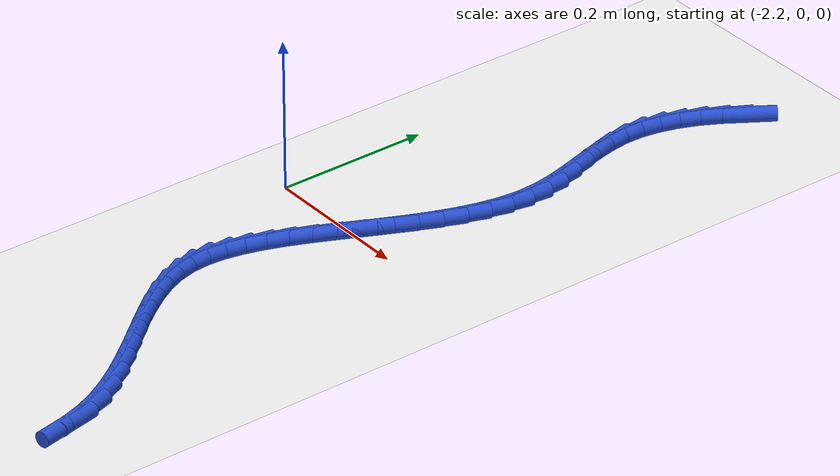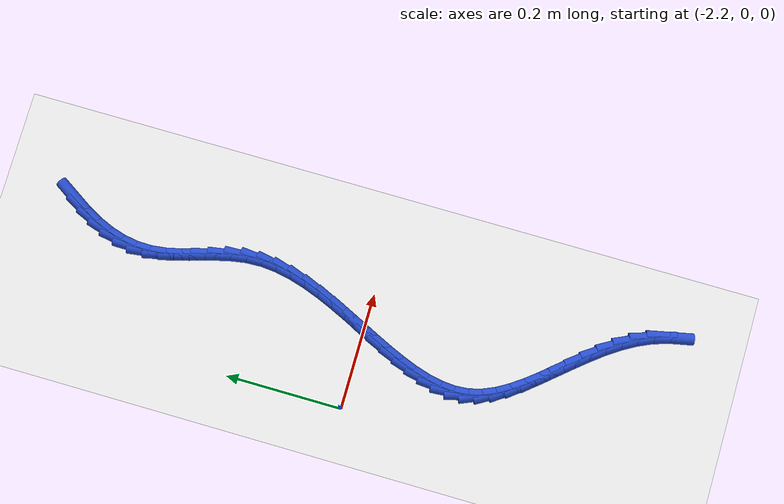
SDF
<sdf version="1.6">
 <world name="default">
  <model name="ground_plane">
   <static>1</static>
   <link name="link">
    <collision name="collision">
     <geometry><plane><normal>0 0 1</normal><size>100 100</size></plane></geometry>
     <surface><friction><ode><mu>100</mu><mu2>50</mu2></ode></friction></surface>
    </collision>
    <visual name="visual">
     <cast_shadows>0</cast_shadows>
     <geometry><plane><normal>0 0 1</normal><size>100 100</size></plane></geometry>
     <material>
      <script><uri>file://media/materials/scripts/gazebo.material</uri><name>Gazebo/WhiteGlow</name></script>
     </material>
    </visual>
   </link>
  </model>
  <model name="line">
   <link name="link_104">
    <pose>-1.9842560962070352 0.5297820726313058 0.01 0 1.57 0.9964001485506433</pose>
    <collision name="collision">
     <geometry><cylinder><radius>0.01</radius><length>0.08</length></cylinder></geometry>
    </collision>
    <visual name="visual">
     <material>
      <script><name>Gazebo/Blue</name><uri>file://media/materials/scripts/gazebo.material</uri></script>
     </material>
     <geometry><cylinder><radius>0.01</radius><length>0.08</length></cylinder></geometry>
    </visual>
   </link>
   <link name="link_105">
    <pose>-1.9994761333052007 0.5062649074560599 0.01 0 1.57 1.0769090169903641</pose>
    <collision name="collision">
     <geometry><cylinder><radius>0.01</radius><length>0.08</length></cylinder></geometry>
    </collision>
    <visual name="visual">
     <material>
      <script><name>Gazebo/Blue</name><uri>file://media/materials/scripts/gazebo.material</uri></script>
     </material>
     <geometry><cylinder><radius>0.01</radius><length>0.08</length></cylinder></geometry>
    </visual>
   </link>
   <link name="link_106">
    <pose>-2.012404169663452 0.48225258746938654 0.01 0 1.57 1.1723357941536177</pose>
    <collision name="collision">
     <geometry><cylinder><radius>0.01</radius><length>0.08</length></cylinder></geometry>
    </collision>
    <visual name="visual">
     <material>
      <script><name>Gazebo/Blue</name><uri>file://media/materials/scripts/gazebo.material</uri></script>
     </material>
     <geometry><cylinder><radius>0.01</radius><length>0.08</length></cylinder></geometry>
    </visual>
   </link>
   <link name="link_107">
    <pose>-2.022705017387717 0.45778383839870124 0.01 0 1.57 1.2840450705789492</pose>
    <collision name="collision">
     <geometry><cylinder><radius>0.01</radius><length>0.08</length></cylinder></geometry>
    </collision>
    <visual name="visual">
     <material>
      <script><name>Gazebo/Blue</name><uri>file://media/materials/scripts/gazebo.material</uri></script>
     </material>
     <geometry><cylinder><radius>0.01</radius><length>0.08</length></cylinder></geometry>
    </visual>
   </link>
   <link name="link_108">
    <pose>-2.0300434885839236 0.4328973859714193 0.01 0 1.57 1.4122013469662544</pose>
    <collision name="collision">
     <geometry><cylinder><radius>0.01</radius><length>0.08</length></cylinder></geometry>
    </collision>
    <visual name="visual">
     <material>
      <script><name>Gazebo/Blue</name><uri>file://media/materials/scripts/gazebo.material</uri></script>
     </material>
     <geometry><cylinder><radius>0.01</radius><length>0.08</length></cylinder></geometry>
    </visual>
   </link>
   <link name="link_109">
    <pose>-2.034084395358 0.40763195591495627 0.01 0 1.57 1.5548562515610727</pose>
    <collision name="collision">
     <geometry><cylinder><radius>0.01</radius><length>0.08</length></cylinder></geometry>
    </collision>
    <visual name="visual">
     <material>
      <script><name>Gazebo/Blue</name><uri>file://media/materials/scripts/gazebo.material</uri></script>
     </material>
     <geometry><cylinder><radius>0.01</radius><length>0.08</length></cylinder></geometry>
    </visual>
   </link>
   <link name="link_110">
    <pose>-2.0344925864323202 0.38202627364129293 0.01 0 1.57 -1.4457102988363895</pose>
    <collision name="collision">
     <geometry><cylinder><radius>0.01</radius><length>0.08</length></cylinder></geometry>
    </collision>
    <visual name="visual">
     <material>
      <script><name>Gazebo/Blue</name><uri>file://media/materials/scripts/gazebo.material</uri></script>
     </material>
     <geometry><cylinder><radius>0.01</radius><length>0.08</length></cylinder></geometry>
    </visual>
   </link>
   <link name="link_111">
    <pose>-2.0312346217600123 0.35611646545508485 0.01 0 1.57 -1.3482895992699346</pose>
    <collision name="collision">
     <geometry><cylinder><radius>0.01</radius><length>0.08</length></cylinder></geometry>
    </collision>
    <visual name="visual">
     <material>
      <script><name>Gazebo/Blue</name><uri>file://media/materials/scripts/gazebo.material</uri></script>
     </material>
     <geometry><cylinder><radius>0.01</radius><length>0.08</length></cylinder></geometry>
    </visual>
   </link>
   <link name="link_112">
    <pose>-2.0253098018199336 0.32992976106320687 0.01 0 1.57 -1.2988797099758886</pose>
    <collision name="collision">
     <geometry><cylinder><radius>0.01</radius><length>0.08</length></cylinder></geometry>
    </collision>
    <visual name="visual">
     <material>
      <script><name>Gazebo/Blue</name><uri>file://media/materials/scripts/gazebo.material</uri></script>
     </material>
     <geometry><cylinder><radius>0.01</radius><length>0.08</length></cylinder></geometry>
    </visual>
   </link>
   <link name="link_113">
    <pose>-2.017938212422154 0.30349148820564165 0.01 0 1.57 -1.293195786567322</pose>
    <collision name="collision">
     <geometry><cylinder><radius>0.01</radius><length>0.08</length></cylinder></geometry>
    </collision>
    <visual name="visual">
     <material>
      <script><name>Gazebo/Blue</name><uri>file://media/materials/scripts/gazebo.material</uri></script>
     </material>
     <geometry><cylinder><radius>0.01</radius><length>0.08</length></cylinder></geometry>
    </visual>
   </link>
   <link name="link_114">
    <pose>-2.010339939376748 0.27682697462237227 0.01 0 1.57 -1.3297271415914858</pose>
    <collision name="collision">
     <geometry><cylinder><radius>0.01</radius><length>0.08</length></cylinder></geometry>
    </collision>
    <visual name="visual">
     <material>
      <script><name>Gazebo/Blue</name><uri>file://media/materials/scripts/gazebo.material</uri></script>
     </material>
     <geometry><cylinder><radius>0.01</radius><length>0.08</length></cylinder></geometry>
    </visual>
   </link>
   <link name="link_115">
    <pose>-2.003735068493786 0.24996154805338142 0.01 0 1.57 -1.4098046401773754</pose>
    <collision name="collision">
     <geometry><cylinder><radius>0.01</radius><length>0.08</length></cylinder></geometry>
    </collision>
    <visual name="visual">
     <material>
      <script><name>Gazebo/Blue</name><uri>file://media/materials/scripts/gazebo.material</uri></script>
     </material>
     <geometry><cylinder><radius>0.01</radius><length>0.08</length></cylinder></geometry>
    </visual>
   </link>
   <link name="link_116">
    <pose>-1.9993436855833422 0.22292053623865218 0.01 0 1.57 -1.5324261111794735</pose>
    <collision name="collision">
     <geometry><cylinder><radius>0.01</radius><length>0.08</length></cylinder></geometry>
    </collision>
    <visual name="visual">
     <material>
      <script><name>Gazebo/Blue</name><uri>file://media/materials/scripts/gazebo.material</uri></script>
     </material>
     <geometry><cylinder><radius>0.01</radius><length>0.08</length></cylinder></geometry>
    </visual>
   </link>
   <link name="link_117">
    <pose>-1.99829988942325 0.195730596282614 0.01 0 1.57 1.4814622633433203</pose>
    <collision name="collision">
     <geometry><cylinder><radius>0.01</radius><length>0.08</length></cylinder></geometry>
    </collision>
    <visual name="visual">
     <material>
      <script><name>Gazebo/Blue</name><uri>file://media/materials/scripts/gazebo.material</uri></script>
     </material>
     <geometry><cylinder><radius>0.01</radius><length>0.08</length></cylinder></geometry>
    </visual>
   </link>
   <link name="link_118">
    <pose>-2.000744936746869 0.1684337346846061 0.01 0 1.57 1.374546579074611</pose>
    <collision name="collision">
     <geometry><cylinder><radius>0.01</radius><length>0.08</length></cylinder></geometry>
    </collision>
    <visual name="visual">
     <material>
      <script><name>Gazebo/Blue</name><uri>file://media/materials/scripts/gazebo.material</uri></script>
     </material>
     <geometry><cylinder><radius>0.01</radius><length>0.08</length></cylinder></geometry>
    </visual>
   </link>
   <link name="link_119">
    <pose>-2.0061827350851695 0.14108181139916473 0.01 0 1.57 1.2888411445170007</pose>
    <collision name="collision">
     <geometry><cylinder><radius>0.01</radius><length>0.08</length></cylinder></geometry>
    </collision>
    <visual name="visual">
     <material>
      <script><name>Gazebo/Blue</name><uri>file://media/materials/scripts/gazebo.material</uri></script>
     </material>
     <geometry><cylinder><radius>0.01</radius><length>0.08</length></cylinder></geometry>
    </visual>
   </link>
   <link name="link_120">
    <pose>-2.014106712065802 0.11372684840073254 0.01 0 1.57 1.2228621577993977</pose>
    <collision name="collision">
     <geometry><cylinder><radius>0.01</radius><length>0.08</length></cylinder></geometry>
    </collision>
    <visual name="visual">
     <material>
      <script><name>Gazebo/Blue</name><uri>file://media/materials/scripts/gazebo.material</uri></script>
     </material>
     <geometry><cylinder><radius>0.01</radius><length>0.08</length></cylinder></geometry>
    </visual>
   </link>
   <link name="link_121">
    <pose>-2.02401029531642 0.08642086766375096 0.01 0 1.57 1.1747151789677392</pose>
    <collision name="collision">
     <geometry><cylinder><radius>0.01</radius><length>0.08</length></cylinder></geometry>
    </collision>
    <visual name="visual">
     <material>
      <script><name>Gazebo/Blue</name><uri>file://media/materials/scripts/gazebo.material</uri></script>
     </material>
     <geometry><cylinder><radius>0.01</radius><length>0.08</length></cylinder></geometry>
    </visual>
   </link>
   <link name="link_122">
    <pose>-2.0353869124646735 0.05921589116266255 0.01 0 1.57 1.1427379056804607</pose>
    <collision name="collision">
     <geometry><cylinder><radius>0.01</radius><length>0.08</length></cylinder></geometry>
    </collision>
    <visual name="visual">
     <material>
      <script><name>Gazebo/Blue</name><uri>file://media/materials/scripts/gazebo.material</uri></script>
     </material>
     <geometry><cylinder><radius>0.01</radius><length>0.08</length></cylinder></geometry>
    </visual>
   </link>
   <link name="link_123">
    <pose>-2.0477299911382163 0.03216394087190955 0.01 0 1.57 1.1258086072942377</pose>
    <collision name="collision">
     <geometry><cylinder><radius>0.01</radius><length>0.08</length></cylinder></geometry>
    </collision>
    <visual name="visual">
     <material>
      <script><name>Gazebo/Blue</name><uri>file://media/materials/scripts/gazebo.material</uri></script>
     </material>
     <geometry><cylinder><radius>0.01</radius><length>0.08</length></cylinder></geometry>
    </visual>
   </link>
   <link name="link_124">
    <pose>-2.0605329589646986 0.005317038765934182 0.01 0 1.57 1.1234852826104356</pose>
    <collision name="collision">
     <geometry><cylinder><radius>0.01</radius><length>0.08</length></cylinder></geometry>
    </collision>
    <visual name="visual">
     <material>
      <script><name>Gazebo/Blue</name><uri>file://media/materials/scripts/gazebo.material</uri></script>
     </material>
     <geometry><cylinder><radius>0.01</radius><length>0.08</length></cylinder></geometry>
    </visual>
   </link>
   <link name="link_125">
    <pose>-2.0732892435717725 -0.0212727931808214 0.01 0 1.57 1.136086765804339</pose>
    <collision name="collision">
     <geometry><cylinder><radius>0.01</radius><length>0.08</length></cylinder></geometry>
    </collision>
    <visual name="visual">
     <material>
      <script><name>Gazebo/Blue</name><uri>file://media/materials/scripts/gazebo.material</uri></script>
     </material>
     <geometry><cylinder><radius>0.01</radius><length>0.08</length></cylinder></geometry>
    </visual>
   </link>
   <link name="link_126">
    <pose>-2.0854922725870906 -0.04755353299391495 0.01 0 1.57 1.1647711409723538</pose>
    <collision name="collision">
     <geometry><cylinder><radius>0.01</radius><length>0.08</length></cylinder></geometry>
    </collision>
    <visual name="visual">
     <material>
      <script><name>Gazebo/Blue</name><uri>file://media/materials/scripts/gazebo.material</uri></script>
     </material>
     <geometry><cylinder><radius>0.01</radius><length>0.08</length></cylinder></geometry>
    </visual>
   </link>
   <link name="link_127">
    <pose>-2.096635473638304 -0.07347315869890428 0.01 0 1.57 1.211617821230585</pose>
    <collision name="collision">
     <geometry><cylinder><radius>0.01</radius><length>0.08</length></cylinder></geometry>
    </collision>
    <visual name="visual">
     <material>
      <script><name>Gazebo/Blue</name><uri>file://media/materials/scripts/gazebo.material</uri></script>
     </material>
     <geometry><cylinder><radius>0.01</radius><length>0.08</length></cylinder></geometry>
    </visual>
   </link>
   <link name="link_128">
    <pose>-2.1062122743530654 -0.09897964832134719 0.01 0 1.57 1.279653591845687</pose>
    <collision name="collision">
     <geometry><cylinder><radius>0.01</radius><length>0.08</length></cylinder></geometry>
    </collision>
    <visual name="visual">
     <material>
      <script><name>Gazebo/Blue</name><uri>file://media/materials/scripts/gazebo.material</uri></script>
     </material>
     <geometry><cylinder><radius>0.01</radius><length>0.08</length></cylinder></geometry>
    </visual>
   </link>
   <link name="link_129">
    <pose>-2.1137161023590254 -0.12402097988680144 0.01 0 1.57 1.3726381887159702</pose>
    <collision name="collision">
     <geometry><cylinder><radius>0.01</radius><length>0.08</length></cylinder></geometry>
    </collision>
    <visual name="visual">
     <material>
      <script><name>Gazebo/Blue</name><uri>file://media/materials/scripts/gazebo.material</uri></script>
     </material>
     <geometry><cylinder><radius>0.01</radius><length>0.08</length></cylinder></geometry>
    </visual>
   </link>
   <link name="link_130">
    <pose>-2.118640385283837 -0.14854513142082487 0.01 0 1.57 1.4942121384121583</pose>
    <collision name="collision">
     <geometry><cylinder><radius>0.01</radius><length>0.08</length></cylinder></geometry>
    </collision>
    <visual name="visual">
     <material>
      <script><name>Gazebo/Blue</name><uri>file://media/materials/scripts/gazebo.material</uri></script>
     </material>
     <geometry><cylinder><radius>0.01</radius><length>0.08</length></cylinder></geometry>
    </visual>
   </link>
   <link name="link_131">
    <pose>-2.120478550755151 -0.17250008094897523 0.01 0 1.57 -1.4957449223795902</pose>
    <collision name="collision">
     <geometry><cylinder><radius>0.01</radius><length>0.08</length></cylinder></geometry>
    </collision>
    <visual name="visual">
     <material>
      <script><name>Gazebo/Blue</name><uri>file://media/materials/scripts/gazebo.material</uri></script>
     </material>
     <geometry><cylinder><radius>0.01</radius><length>0.08</length></cylinder></geometry>
    </visual>
   </link>
   <link name="link_132">
    <pose>-2.11872402640062 -0.19583380649681037 0.01 0 1.57 -1.3210101092851323</pose>
    <collision name="collision">
     <geometry><cylinder><radius>0.01</radius><length>0.08</length></cylinder></geometry>
    </collision>
    <visual name="visual">
     <material>
      <script><name>Gazebo/Blue</name><uri>file://media/materials/scripts/gazebo.material</uri></script>
     </material>
     <geometry><cylinder><radius>0.01</radius><length>0.08</length></cylinder></geometry>
    </visual>
   </link>
   <link name="link_133">
    <pose>-2.1129396227256567 -0.21850758705554274 0.01 0 1.57 -1.1625292049145806</pose>
    <collision name="collision">
     <geometry><cylinder><radius>0.01</radius><length>0.08</length></cylinder></geometry>
    </collision>
    <visual name="visual">
     <material>
      <script><name>Gazebo/Blue</name><uri>file://media/materials/scripts/gazebo.material</uri></script>
     </material>
     <geometry><cylinder><radius>0.01</radius><length>0.08</length></cylinder></geometry>
    </visual>
   </link>
   <link name="link_134">
    <pose>-2.1033766938461174 -0.24061469808597336 0.01 0 1.57 -1.0416071018548054</pose>
    <collision name="collision">
     <geometry><cylinder><radius>0.01</radius><length>0.08</length></cylinder></geometry>
    </collision>
    <visual name="visual">
     <material>
      <script><name>Gazebo/Blue</name><uri>file://media/materials/scripts/gazebo.material</uri></script>
     </material>
     <geometry><cylinder><radius>0.01</radius><length>0.08</length></cylinder></geometry>
    </visual>
   </link>
   <link name="link_135">
    <pose>-2.0906805171530207 -0.262323931662261 0.01 0 1.57 -0.9556231526375458</pose>
    <collision name="collision">
     <geometry><cylinder><radius>0.01</radius><length>0.08</length></cylinder></geometry>
    </collision>
    <visual name="visual">
     <material>
      <script><name>Gazebo/Blue</name><uri>file://media/materials/scripts/gazebo.material</uri></script>
     </material>
     <geometry><cylinder><radius>0.01</radius><length>0.08</length></cylinder></geometry>
    </visual>
   </link>
   <link name="link_136">
    <pose>-2.075501005253907 -0.2838049684474752 0.01 0 1.57 -0.8996257886776169</pose>
    <collision name="collision">
     <geometry><cylinder><radius>0.01</radius><length>0.08</length></cylinder></geometry>
    </collision>
    <visual name="visual">
     <material>
      <script><name>Gazebo/Blue</name><uri>file://media/materials/scripts/gazebo.material</uri></script>
     </material>
     <geometry><cylinder><radius>0.01</radius><length>0.08</length></cylinder></geometry>
    </visual>
   </link>
   <link name="link_137">
    <pose>-2.0584880707563187 -0.30522748910468567 0.01 0 1.57 -0.8691991734822673</pose>
    <collision name="collision">
     <geometry><cylinder><radius>0.01</radius><length>0.08</length></cylinder></geometry>
    </collision>
    <visual name="visual">
     <material>
      <script><name>Gazebo/Blue</name><uri>file://media/materials/scripts/gazebo.material</uri></script>
     </material>
     <geometry><cylinder><radius>0.01</radius><length>0.08</length></cylinder></geometry>
    </visual>
   </link>
   <link name="link_138">
    <pose>-2.040291626267796 -0.326761174296962 0.01 0 1.57 -0.8613283877921577</pose>
    <collision name="collision">
     <geometry><cylinder><radius>0.01</radius><length>0.08</length></cylinder></geometry>
    </collision>
    <visual name="visual">
     <material>
      <script><name>Gazebo/Blue</name><uri>file://media/materials/scripts/gazebo.material</uri></script>
     </material>
     <geometry><cylinder><radius>0.01</radius><length>0.08</length></cylinder></geometry>
    </visual>
   </link>
   <link name="link_139">
    <pose>-2.0215615843958816 -0.34857570468737376 0.01 0 1.57 -0.8744826515220949</pose>
    <collision name="collision">
     <geometry><cylinder><radius>0.01</radius><length>0.08</length></cylinder></geometry>
    </collision>
    <visual name="visual">
     <material>
      <script><name>Gazebo/Blue</name><uri>file://media/materials/scripts/gazebo.material</uri></script>
     </material>
     <geometry><cylinder><radius>0.01</radius><length>0.08</length></cylinder></geometry>
    </visual>
   </link>
   <link name="link_140">
    <pose>-2.002947857748115 -0.37084076093899054 0.01 0 1.57 -0.9084517077876147</pose>
    <collision name="collision">
     <geometry><cylinder><radius>0.01</radius><length>0.08</length></cylinder></geometry>
    </collision>
    <visual name="visual">
     <material>
      <script><name>Gazebo/Blue</name><uri>file://media/materials/scripts/gazebo.material</uri></script>
     </material>
     <geometry><cylinder><radius>0.01</radius><length>0.08</length></cylinder></geometry>
    </visual>
   </link>
   <link name="link_141">
    <pose>-1.985100358932038 -0.3937260237148818 0.01 0 1.57 -0.9640856403852838</pose>
    <collision name="collision">
     <geometry><cylinder><radius>0.01</radius><length>0.08</length></cylinder></geometry>
    </collision>
    <visual name="visual">
     <material>
      <script><name>Gazebo/Blue</name><uri>file://media/materials/scripts/gazebo.material</uri></script>
     </material>
     <geometry><cylinder><radius>0.01</radius><length>0.08</length></cylinder></geometry>
    </visual>
   </link>
   <link name="link_142">
    <pose>-1.9686690005551915 -0.4174011736781173 0.01 0 1.57 -1.0428717134700438</pose>
    <collision name="collision">
     <geometry><cylinder><radius>0.01</radius><length>0.08</length></cylinder></geometry>
    </collision>
    <visual name="visual">
     <material>
      <script><name>Gazebo/Blue</name><uri>file://media/materials/scripts/gazebo.material</uri></script>
     </material>
     <geometry><cylinder><radius>0.01</radius><length>0.08</length></cylinder></geometry>
    </visual>
   </link>
   <link name="link_143">
    <pose>-1.954303695225117 -0.4420358914917666 0.01 0 1.57 -1.1461506679013616</pose>
    <collision name="collision">
     <geometry><cylinder><radius>0.01</radius><length>0.08</length></cylinder></geometry>
    </collision>
    <visual name="visual">
     <material>
      <script><name>Gazebo/Blue</name><uri>file://media/materials/scripts/gazebo.material</uri></script>
     </material>
     <geometry><cylinder><radius>0.01</radius><length>0.08</length></cylinder></geometry>
    </visual>
   </link>
   <link name="link_144">
    <pose>-1.9426543555493554 -0.46779985781889916 0.01 0 1.57 -1.2662061083509124</pose>
    <collision name="collision">
     <geometry><cylinder><radius>0.01</radius><length>0.08</length></cylinder></geometry>
    </collision>
    <visual name="visual">
     <material>
      <script><name>Gazebo/Blue</name><uri>file://media/materials/scripts/gazebo.material</uri></script>
     </material>
     <geometry><cylinder><radius>0.01</radius><length>0.08</length></cylinder></geometry>
    </visual>
   </link>
   <link name="link_145">
    <pose>-1.934171965519157 -0.49478179663046273 0.01 0 1.57 -1.36387813664694</pose>
    <collision name="collision">
     <geometry><cylinder><radius>0.01</radius><length>0.08</length></cylinder></geometry>
    </collision>
    <visual name="visual">
     <material>
      <script><name>Gazebo/Blue</name><uri>file://media/materials/scripts/gazebo.material</uri></script>
     </material>
     <geometry><cylinder><radius>0.01</radius><length>0.08</length></cylinder></geometry>
    </visual>
   </link>
  </model>
 </world>
</sdf>
